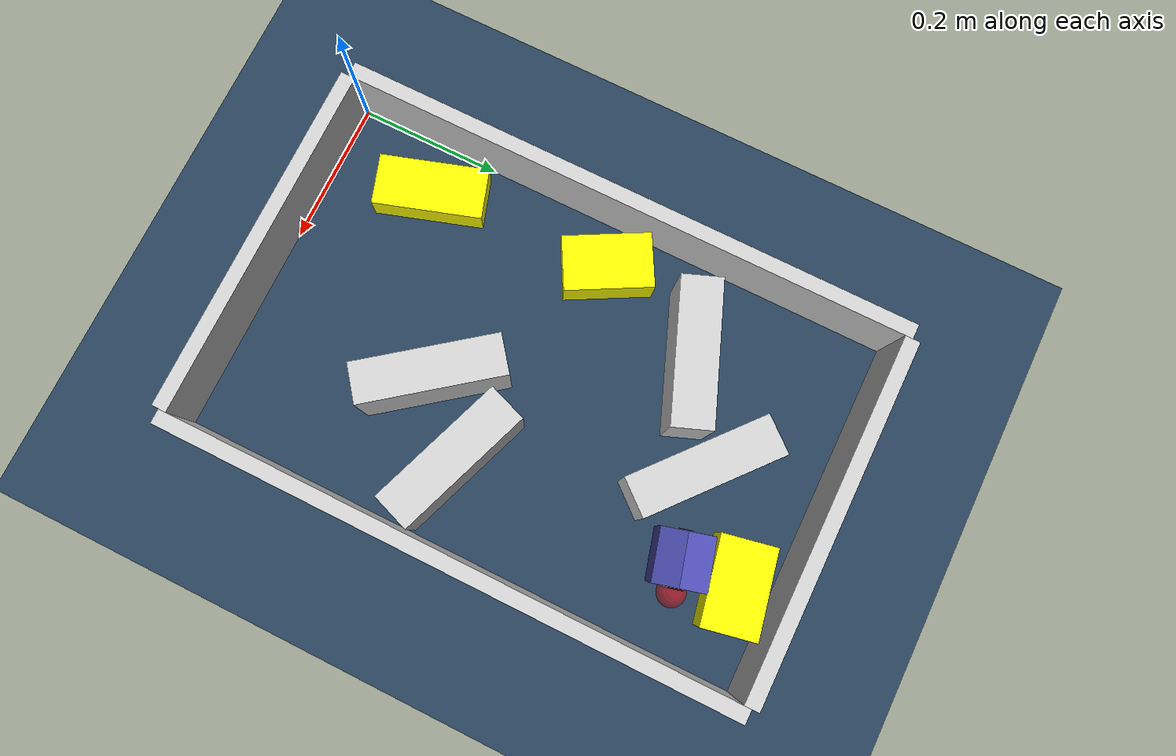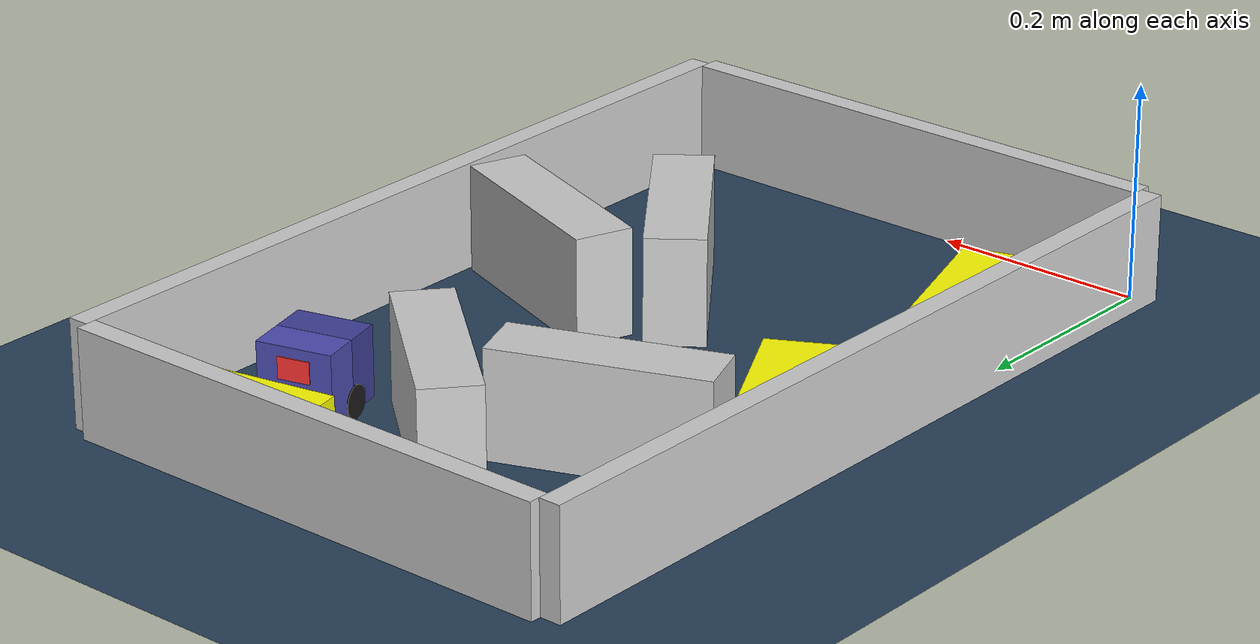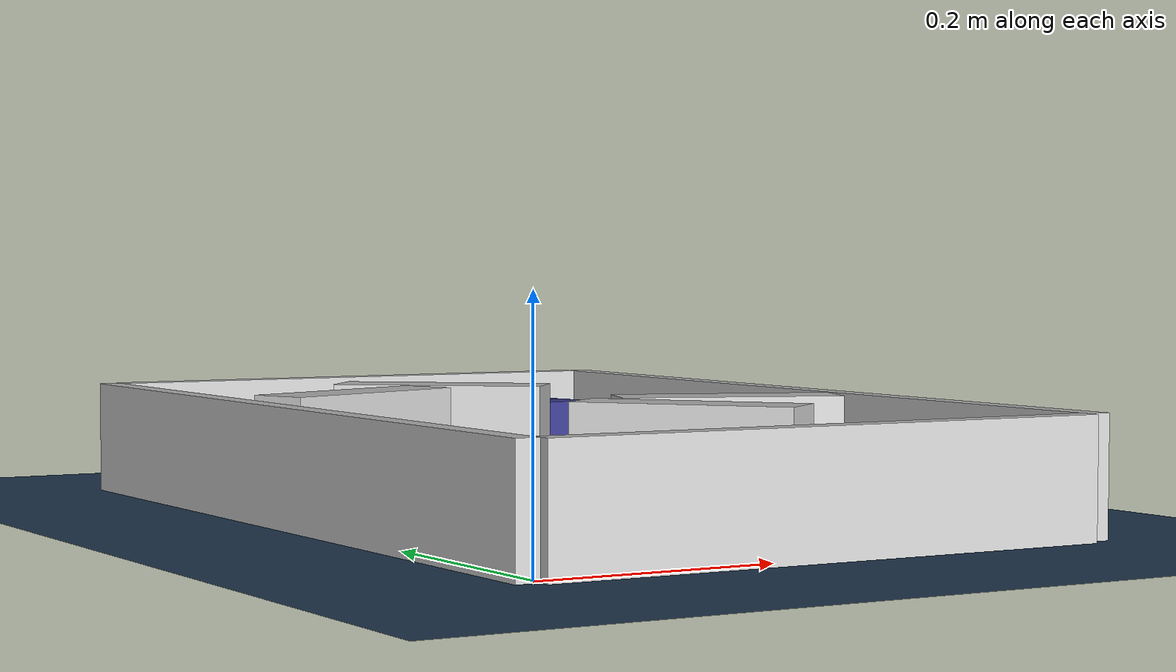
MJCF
<?xml version='1.0' encoding='utf-8'?>
<mujoco model="real_buildable">
  <compiler angle="degree" />
  <option timestep="0.002" integrator="implicitfast" iterations="100" cone="elliptic" />
  <default>
    <geom density="1" />
  </default>
  <asset>
    <texture builtin="gradient" height="3072" rgb1="0.3 0.5 0.7" rgb2="0 0 0" type="skybox" width="512" />
    <texture builtin="checker" height="300" mark="edge" markrgb="0.8 0.8 0.8" name="groundplane" rgb1="0.2 0.3 0.4" rgb2="0.1 0.2 0.3" type="2d" width="300" />
    <material name="groundplane" reflectance="0.2" texrepeat="5 5" texture="groundplane" texuniform="true" />
  </asset>
  <worldbody>
    <light dir="0 0 -1" directional="true" pos="0 0 1.5" />
    <geom name="floor" type="plane" condim="4" friction="0.5 0.005 0.001" material="groundplane" size="0 0 0.05" />
    <body name="walls">
      <geom name="wall_boundary_left" type="box" condim="4" friction="1.0 0.005 0.0001" rgba="0.8 0.8 0.8 1" pos="-0.010000 0.387500 0.050000" euler="0 0 0.000000" size="0.010000 0.397500 0.050000" />
      <geom name="wall_boundary_right" type="box" condim="4" friction="1.0 0.005 0.0001" rgba="0.8 0.8 0.8 1" pos="0.500000 0.387500 0.050000" euler="0 0 0.000000" size="0.010000 0.397500 0.050000" />
      <geom name="wall_boundary_bottom" type="box" condim="4" friction="1.0 0.005 0.0001" rgba="0.8 0.8 0.8 1" pos="0.245000 -0.010000 0.050000" euler="0 0 0.000000" size="0.245000 0.010000 0.050000" />
      <geom name="wall_boundary_top" type="box" condim="4" friction="1.0 0.005 0.0001" rgba="0.8 0.8 0.8 1" pos="0.245000 0.785000 0.050000" euler="0 0 0.000000" size="0.245000 0.010000 0.050000" />
      <geom name="wall_inner_1" type="box" condim="4" friction="1.0 0.005 0.0001" rgba="0.8 0.8 0.8 1" pos="0.299172 0.262556 0.050000" euler="0 0 -52.520843" size="0.097500 0.027500 0.050000" />
      <geom name="wall_inner_2" type="box" condim="4" friction="1.0 0.005 0.0001" rgba="0.8 0.8 0.8 1" pos="0.384918 0.336265 0.050000" euler="0 0 -20.095559" size="0.097500 0.027500 0.050000" />
      <geom name="wall_inner_3" type="box" condim="4" friction="1.0 0.005 0.0001" rgba="0.8 0.8 0.8 1" pos="0.132000 0.552000 0.050000" euler="0 0 20.900000" size="0.097500 0.027500 0.050000" />
      <geom name="wall_inner_4" type="box" condim="4" friction="1.0 0.005 0.0001" rgba="0.8 0.8 0.8 1" pos="0.256000 0.621000 0.050000" euler="0 0 139.600000" size="0.097500 0.027500 0.050000" />
    </body>
    <body name="car" pos="0.36897800644921686 0.64598007504597121 0.01" quat="0.6099870804658718 0 0 0.79241135886906755">
      <freejoint name="car_freejoint" />
      <inertial pos="0 0 0.0375" mass="0.35" diaginertia="0.000266 0.000266 0.000286" />
      <geom name="front_chassis_collision" type="box" pos="0.0175 0 0.0375" size="0.0175 0.035 0.0325" rgba="0.3 0.3 0.7 1" />
      <geom name="rear_chassis_collision" type="box" pos="-0.0175 0 0.0375" size="0.0175 0.035 0.0325" rgba="0.25 0.25 0.6 1" />
      <geom name="front_marker" type="box" pos="0.034 0 0.0505" size="0.002 0.015 0.01" rgba="1 0.2 0.2 1" contype="0" conaffinity="0" />
      <body name="rear_support_body" pos="-0.03 0 0.0025">
        <joint name="rear_caster_joint" type="ball" damping="0.0001" />
        <inertial pos="0 0 0" mass="0.025" diaginertia="0.000001 0.000001 0.000001" />
        <geom name="rear_support" type="sphere" pos="0 0 0" size="0.0025" friction="0 0 0" rgba="0.7 0.1 0.1 1" />
      </body>
      <body name="front_support_body" pos="0.03 0 0.0025">
        <joint name="front_caster_joint" type="ball" damping="0.0001" />
        <inertial pos="0 0 0" mass="0.025" diaginertia="0.000001 0.000001 0.000001" />
        <geom name="front_support" type="sphere" pos="0 0 0" size="0.0025" friction="0 0 0" rgba="0.1 0.7 0.1 1" />
      </body>
      <body name="left_wheel" pos="0 0.0375 0.015">
        <inertial pos="0 0 0" mass="0.05" diaginertia="0.000003 0.000006 0.000003" />
        <joint name="left_wheel_joint" type="hinge" axis="0 1 0" damping="0.01" armature="0.0001" />
        <geom name="left_wheel_collision" type="cylinder" size="0.015 0.0005" euler="90 0 0" rgba="0.1 0.1 0.1 1" />
      </body>
      <body name="right_wheel" pos="0 -0.0375 0.015">
        <inertial pos="0 0 0" mass="0.05" diaginertia="0.000003 0.000006 0.000003" />
        <joint name="right_wheel_joint" type="hinge" axis="0 1 0" damping="0.01" armature="0.0001" />
        <geom name="right_wheel_collision" type="cylinder" size="0.015 0.0005" euler="90 0 0" rgba="0.1 0.1 0.1 1" />
      </body>
    </body>
    <body name="obstacle_0_movable">
      <geom name="obstacle_0_movable" condim="4" pos="0.061671443041293413 0.39930914185396976 0.025000000000000001" friction="1 0.005 0.0001" rgba="1 1 0 1" size="0.037500 0.060000 0.025000" type="box" mass="0.1" quat="0.9693584618411778 0 0 0.24565050876581929" />
      <joint type="free" />
    </body>
    <body name="obstacle_1_movable">
      <geom name="obstacle_1_movable" condim="4" pos="0.36773793941977506 0.72645592323525832 0.025000000000000001" friction="1 0.005 0.0001" rgba="1 1 0 1" size="0.037500 0.060000 0.025000" type="box" mass="0.1" quat="0.77227168837819082 0 0 -0.63529240458980651" />
      <joint type="free" />
    </body>
    <body name="obstacle_2_movable">
      <geom name="obstacle_2_movable" condim="4" pos="0.069543746906730874 0.13922638780695565 0.02" friction="1 0.005 0.0001" rgba="1 1 0 1" size="0.035000 0.075000 0.020000" type="box" mass="0.1" quat="0.98814308116708682 0 0 0.1535358301557527" />
      <joint type="free" />
    </body>
    <site name="goal" type="sphere" pos="0.410000 0.660000 0.0" size="0.02" rgba="1 0 0 0.5" />
  </worldbody>
  <actuator>
    <velocity name="left_wheel_drive" joint="left_wheel_joint" ctrlrange="-25 25" kv="0.75" forcerange="-0.5 0.5" />
    <velocity name="right_wheel_drive" joint="right_wheel_joint" ctrlrange="-25 25" kv="0.75" forcerange="-0.5 0.5" />
  </actuator>
</mujoco>
